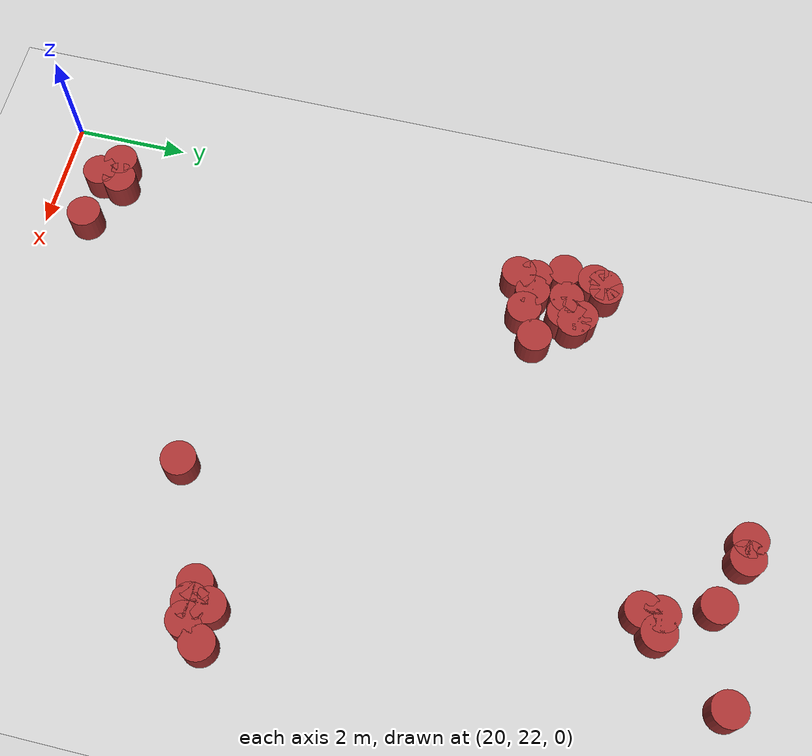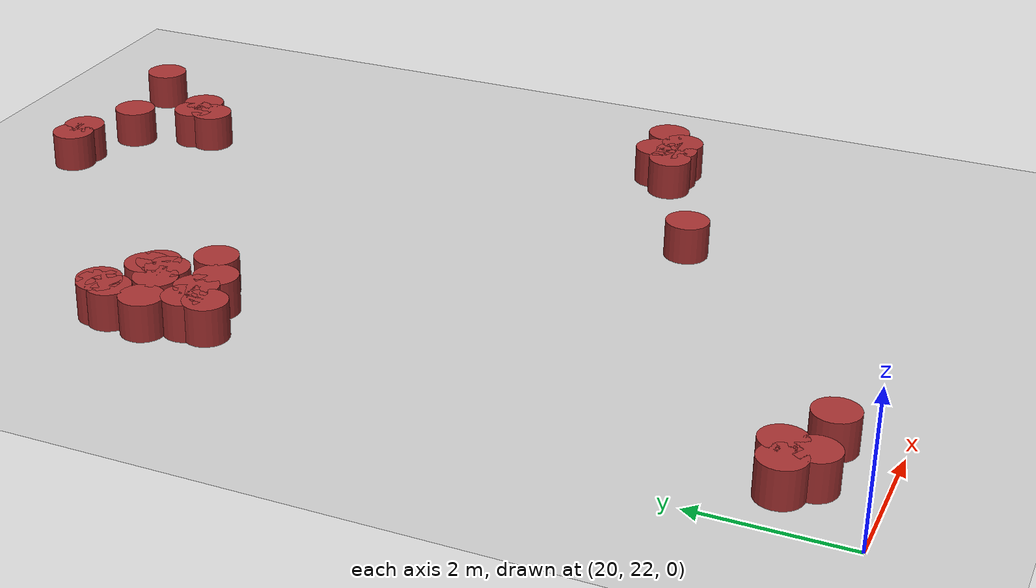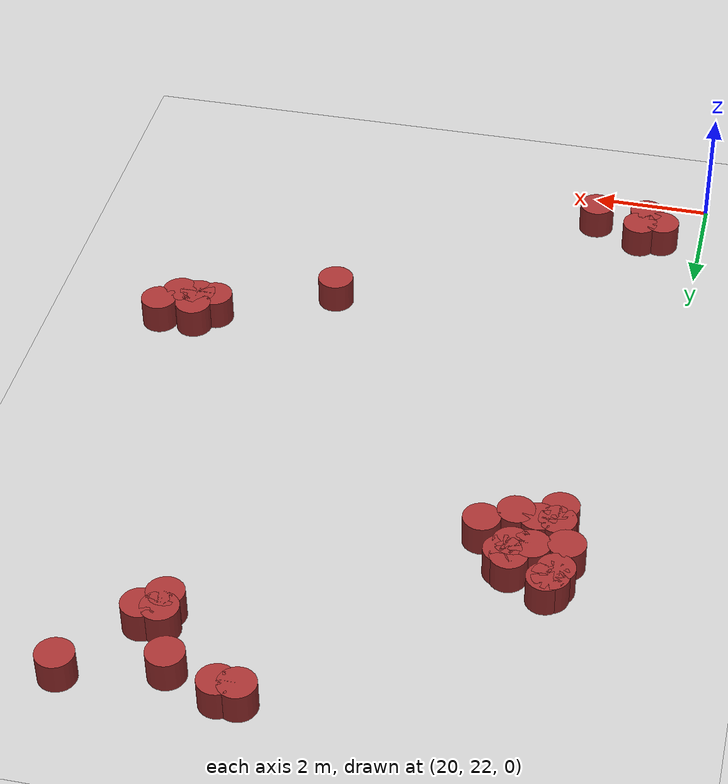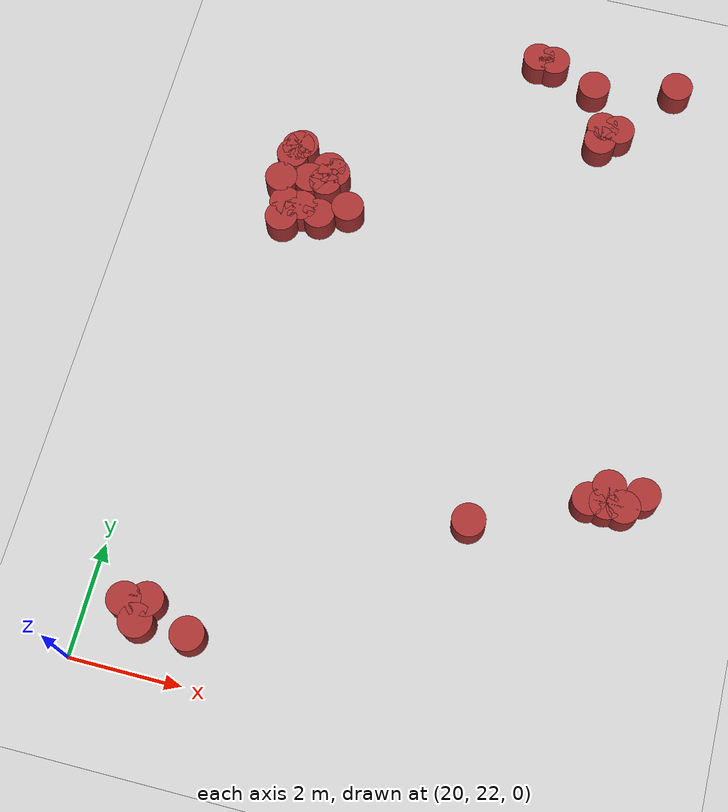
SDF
<sdf version="1.6">
 <world name="default">
  <model name="ground_plane">
   <static>1</static>
   <link name="link">
    <collision name="collision">
     <geometry><plane><normal>0 0 1</normal><size>100 100</size></plane></geometry>
     <surface><friction><ode><mu>100</mu><mu2>50</mu2></ode></friction></surface>
    </collision>
    <visual name="visual">
     <cast_shadows>0</cast_shadows>
     <geometry><plane><normal>0 0 1</normal><size>100 100</size></plane></geometry>
     <material>
      <script><uri>file://media/materials/scripts/gazebo.material</uri><name>Gazebo/Grey</name></script>
     </material>
    </visual>
   </link>
  </model>
  <model name="unit_cylinder_172">
   <static>1</static>
   <pose>22.4428 31.086 0 0 -0 0</pose>
   <link name="link">
    <inertial>
     <mass>1</mass>
     <inertia><ixx>0.145833</ixx><ixy>0</ixy><ixz>0</ixz><iyy>0.145833</iyy><iyz>0</iyz><izz>0.125</izz></inertia>
    </inertial>
    <collision name="collision">
     <geometry><cylinder><radius>0.3</radius><length>1</length></cylinder></geometry>
    </collision>
    <visual name="visual">
     <geometry><cylinder><radius>0.3</radius><length>1</length></cylinder></geometry>
     <material><ambient>0.648 0.192 0.192 1</ambient><diffuse>0.648 0.192 0.192 1</diffuse></material>
     <material>
      <script><name>Gazebo/Grey</name><uri>file://media/materials/scripts/gazebo.material</uri></script>
     </material>
    </visual>
   </link>
  </model>
  <model name="unit_cylinder_175">
   <static>1</static>
   <pose>26.3626 34.7436 0 0 -0 0</pose>
   <link name="link">
    <inertial>
     <mass>1</mass>
     <inertia><ixx>0.145833</ixx><ixy>0</ixy><ixz>0</ixz><iyy>0.145833</iyy><iyz>0</iyz><izz>0.125</izz></inertia>
    </inertial>
    <collision name="collision">
     <geometry><cylinder><radius>0.3</radius><length>1</length></cylinder></geometry>
    </collision>
    <visual name="visual">
     <geometry><cylinder><radius>0.3</radius><length>1</length></cylinder></geometry>
     <material><ambient>0.648 0.192 0.192 1</ambient><diffuse>0.648 0.192 0.192 1</diffuse></material>
     <material>
      <script><name>Gazebo/Grey</name><uri>file://media/materials/scripts/gazebo.material</uri></script>
     </material>
    </visual>
   </link>
  </model>
  <model name="unit_cylinder_176">
   <static>1</static>
   <pose>21.0748 23.1889 0 0 -0 0</pose>
   <link name="link">
    <inertial>
     <mass>1</mass>
     <inertia><ixx>0.145833</ixx><ixy>0</ixy><ixz>0</ixz><iyy>0.145833</iyy><iyz>0</iyz><izz>0.125</izz></inertia>
    </inertial>
    <collision name="collision">
     <geometry><cylinder><radius>0.3</radius><length>1</length></cylinder></geometry>
    </collision>
    <visual name="visual">
     <geometry><cylinder><radius>0.3</radius><length>1</length></cylinder></geometry>
     <material><ambient>0.648 0.192 0.192 1</ambient><diffuse>0.648 0.192 0.192 1</diffuse></material>
     <material>
      <script><name>Gazebo/Grey</name><uri>file://media/materials/scripts/gazebo.material</uri></script>
     </material>
    </visual>
   </link>
  </model>
  <model name="unit_cylinder_262">
   <static>1</static>
   <pose>20.7 23.1 0 0 -0 0</pose>
   <link name="link">
    <inertial>
     <mass>1</mass>
     <inertia><ixx>0.145833</ixx><ixy>0</ixy><ixz>0</ixz><iyy>0.145833</iyy><iyz>0</iyz><izz>0.125</izz></inertia>
    </inertial>
    <collision name="collision">
     <geometry><cylinder><radius>0.3</radius><length>1</length></cylinder></geometry>
    </collision>
    <visual name="visual">
     <geometry><cylinder><radius>0.3</radius><length>1</length></cylinder></geometry>
     <material><ambient>0.648 0.192 0.192 1</ambient><diffuse>0.648 0.192 0.192 1</diffuse></material>
     <material>
      <script><name>Gazebo/Grey</name><uri>file://media/materials/scripts/gazebo.material</uri></script>
     </material>
    </visual>
   </link>
  </model>
  <model name="unit_cylinder_270">
   <static>1</static>
   <pose>21 22.8 0 0 -0 0</pose>
   <link name="link">
    <inertial>
     <mass>1</mass>
     <inertia><ixx>0.145833</ixx><ixy>0</ixy><ixz>0</ixz><iyy>0.145833</iyy><iyz>0</iyz><izz>0.125</izz></inertia>
    </inertial>
    <collision name="collision">
     <geometry><cylinder><radius>0.3</radius><length>1</length></cylinder></geometry>
    </collision>
    <visual name="visual">
     <geometry><cylinder><radius>0.3</radius><length>1</length></cylinder></geometry>
     <material><ambient>0.648 0.192 0.192 1</ambient><diffuse>0.648 0.192 0.192 1</diffuse></material>
     <material>
      <script><name>Gazebo/Grey</name><uri>file://media/materials/scripts/gazebo.material</uri></script>
     </material>
    </visual>
   </link>
  </model>
  <model name="unit_cylinder_276">
   <static>1</static>
   <pose>21.3 30.6 0 0 -0 0</pose>
   <link name="link">
    <inertial>
     <mass>1</mass>
     <inertia><ixx>0.145833</ixx><ixy>0</ixy><ixz>0</ixz><iyy>0.145833</iyy><iyz>0</iyz><izz>0.125</izz></inertia>
    </inertial>
    <collision name="collision">
     <geometry><cylinder><radius>0.3</radius><length>1</length></cylinder></geometry>
    </collision>
    <visual name="visual">
     <geometry><cylinder><radius>0.3</radius><length>1</length></cylinder></geometry>
     <material><ambient>0.648 0.192 0.192 1</ambient><diffuse>0.648 0.192 0.192 1</diffuse></material>
     <material>
      <script><name>Gazebo/Grey</name><uri>file://media/materials/scripts/gazebo.material</uri></script>
     </material>
    </visual>
   </link>
  </model>
  <model name="unit_cylinder_277">
   <static>1</static>
   <pose>21.3 30.9 0 0 -0 0</pose>
   <link name="link">
    <inertial>
     <mass>1</mass>
     <inertia><ixx>0.145833</ixx><ixy>0</ixy><ixz>0</ixz><iyy>0.145833</iyy><iyz>0</iyz><izz>0.125</izz></inertia>
    </inertial>
    <collision name="collision">
     <geometry><cylinder><radius>0.3</radius><length>1</length></cylinder></geometry>
    </collision>
    <visual name="visual">
     <geometry><cylinder><radius>0.3</radius><length>1</length></cylinder></geometry>
     <material><ambient>0.648 0.192 0.192 1</ambient><diffuse>0.648 0.192 0.192 1</diffuse></material>
     <material>
      <script><name>Gazebo/Grey</name><uri>file://media/materials/scripts/gazebo.material</uri></script>
     </material>
    </visual>
   </link>
  </model>
  <model name="unit_cylinder_279">
   <static>1</static>
   <pose>21.2164 32.0962 0 0 -0 0</pose>
   <link name="link">
    <inertial>
     <mass>1</mass>
     <inertia><ixx>0.145833</ixx><ixy>0</ixy><ixz>0</ixz><iyy>0.145833</iyy><iyz>0</iyz><izz>0.125</izz></inertia>
    </inertial>
    <collision name="collision">
     <geometry><cylinder><radius>0.3</radius><length>1</length></cylinder></geometry>
    </collision>
    <visual name="visual">
     <geometry><cylinder><radius>0.3</radius><length>1</length></cylinder></geometry>
     <material><ambient>0.648 0.192 0.192 1</ambient><diffuse>0.648 0.192 0.192 1</diffuse></material>
     <material>
      <script><name>Gazebo/Grey</name><uri>file://media/materials/scripts/gazebo.material</uri></script>
     </material>
    </visual>
   </link>
  </model>
  <model name="unit_cylinder_280">
   <static>1</static>
   <pose>21.0788 31.3877 0 0 -0 0</pose>
   <link name="link">
    <inertial>
     <mass>1</mass>
     <inertia><ixx>0.145833</ixx><ixy>0</ixy><ixz>0</ixz><iyy>0.145833</iyy><iyz>0</iyz><izz>0.125</izz></inertia>
    </inertial>
    <collision name="collision">
     <geometry><cylinder><radius>0.3</radius><length>1</length></cylinder></geometry>
    </collision>
    <visual name="visual">
     <geometry><cylinder><radius>0.3</radius><length>1</length></cylinder></geometry>
     <material><ambient>0.648 0.192 0.192 1</ambient><diffuse>0.648 0.192 0.192 1</diffuse></material>
     <material>
      <script><name>Gazebo/Grey</name><uri>file://media/materials/scripts/gazebo.material</uri></script>
     </material>
    </visual>
   </link>
  </model>
  <model name="unit_cylinder_281">
   <static>1</static>
   <pose>21.6 30.9 0 0 -0 0</pose>
   <link name="link">
    <inertial>
     <mass>1</mass>
     <inertia><ixx>0.145833</ixx><ixy>0</ixy><ixz>0</ixz><iyy>0.145833</iyy><iyz>0</iyz><izz>0.125</izz></inertia>
    </inertial>
    <collision name="collision">
     <geometry><cylinder><radius>0.3</radius><length>1</length></cylinder></geometry>
    </collision>
    <visual name="visual">
     <geometry><cylinder><radius>0.3</radius><length>1</length></cylinder></geometry>
     <material><ambient>0.648 0.192 0.192 1</ambient><diffuse>0.648 0.192 0.192 1</diffuse></material>
     <material>
      <script><name>Gazebo/Grey</name><uri>file://media/materials/scripts/gazebo.material</uri></script>
     </material>
    </visual>
   </link>
  </model>
  <model name="unit_cylinder_282">
   <static>1</static>
   <pose>21.6 31.5 0 0 -0 0</pose>
   <link name="link">
    <inertial>
     <mass>1</mass>
     <inertia><ixx>0.145833</ixx><ixy>0</ixy><ixz>0</ixz><iyy>0.145833</iyy><iyz>0</iyz><izz>0.125</izz></inertia>
    </inertial>
    <collision name="collision">
     <geometry><cylinder><radius>0.3</radius><length>1</length></cylinder></geometry>
    </collision>
    <visual name="visual">
     <geometry><cylinder><radius>0.3</radius><length>1</length></cylinder></geometry>
     <material><ambient>0.648 0.192 0.192 1</ambient><diffuse>0.648 0.192 0.192 1</diffuse></material>
     <material>
      <script><name>Gazebo/Grey</name><uri>file://media/materials/scripts/gazebo.material</uri></script>
     </material>
    </visual>
   </link>
  </model>
  <model name="unit_cylinder_284">
   <static>1</static>
   <pose>21.9 22.8 0 0 -0 0</pose>
   <link name="link">
    <inertial>
     <mass>1</mass>
     <inertia><ixx>0.145833</ixx><ixy>0</ixy><ixz>0</ixz><iyy>0.145833</iyy><iyz>0</iyz><izz>0.125</izz></inertia>
    </inertial>
    <collision name="collision">
     <geometry><cylinder><radius>0.3</radius><length>1</length></cylinder></geometry>
    </collision>
    <visual name="visual">
     <geometry><cylinder><radius>0.3</radius><length>1</length></cylinder></geometry>
     <material><ambient>0.648 0.192 0.192 1</ambient><diffuse>0.648 0.192 0.192 1</diffuse></material>
     <material>
      <script><name>Gazebo/Grey</name><uri>file://media/materials/scripts/gazebo.material</uri></script>
     </material>
    </visual>
   </link>
  </model>
  <model name="unit_cylinder_285">
   <static>1</static>
   <pose>21.9562 30.8161 0 0 -0 0</pose>
   <link name="link">
    <inertial>
     <mass>1</mass>
     <inertia><ixx>0.145833</ixx><ixy>0</ixy><ixz>0</ixz><iyy>0.145833</iyy><iyz>0</iyz><izz>0.125</izz></inertia>
    </inertial>
    <collision name="collision">
     <geometry><cylinder><radius>0.3</radius><length>1</length></cylinder></geometry>
    </collision>
    <visual name="visual">
     <geometry><cylinder><radius>0.3</radius><length>1</length></cylinder></geometry>
     <material><ambient>0.648 0.192 0.192 1</ambient><diffuse>0.648 0.192 0.192 1</diffuse></material>
     <material>
      <script><name>Gazebo/Grey</name><uri>file://media/materials/scripts/gazebo.material</uri></script>
     </material>
    </visual>
   </link>
  </model>
  <model name="unit_cylinder_286">
   <static>1</static>
   <pose>21.9 31.5 0 0 -0 0</pose>
   <link name="link">
    <inertial>
     <mass>1</mass>
     <inertia><ixx>0.145833</ixx><ixy>0</ixy><ixz>0</ixz><iyy>0.145833</iyy><iyz>0</iyz><izz>0.125</izz></inertia>
    </inertial>
    <collision name="collision">
     <geometry><cylinder><radius>0.3</radius><length>1</length></cylinder></geometry>
    </collision>
    <visual name="visual">
     <geometry><cylinder><radius>0.3</radius><length>1</length></cylinder></geometry>
     <material><ambient>0.648 0.192 0.192 1</ambient><diffuse>0.648 0.192 0.192 1</diffuse></material>
     <material>
      <script><name>Gazebo/Grey</name><uri>file://media/materials/scripts/gazebo.material</uri></script>
     </material>
    </visual>
   </link>
  </model>
  <model name="unit_cylinder_287">
   <static>1</static>
   <pose>21.9 31.8 0 0 -0 0</pose>
   <link name="link">
    <inertial>
     <mass>1</mass>
     <inertia><ixx>0.145833</ixx><ixy>0</ixy><ixz>0</ixz><iyy>0.145833</iyy><iyz>0</iyz><izz>0.125</izz></inertia>
    </inertial>
    <collision name="collision">
     <geometry><cylinder><radius>0.3</radius><length>1</length></cylinder></geometry>
    </collision>
    <visual name="visual">
     <geometry><cylinder><radius>0.3</radius><length>1</length></cylinder></geometry>
     <material><ambient>0.648 0.192 0.192 1</ambient><diffuse>0.648 0.192 0.192 1</diffuse></material>
     <material>
      <script><name>Gazebo/Grey</name><uri>file://media/materials/scripts/gazebo.material</uri></script>
     </material>
    </visual>
   </link>
  </model>
  <model name="unit_cylinder_290">
   <static>1</static>
   <pose>21.2837 32.1368 0 0 -0 0</pose>
   <link name="link">
    <inertial>
     <mass>1</mass>
     <inertia><ixx>0.145833</ixx><ixy>0</ixy><ixz>0</ixz><iyy>0.145833</iyy><iyz>0</iyz><izz>0.125</izz></inertia>
    </inertial>
    <collision name="collision">
     <geometry><cylinder><radius>0.3</radius><length>1</length></cylinder></geometry>
    </collision>
    <visual name="visual">
     <geometry><cylinder><radius>0.3</radius><length>1</length></cylinder></geometry>
     <material><ambient>0.648 0.192 0.192 1</ambient><diffuse>0.648 0.192 0.192 1</diffuse></material>
     <material>
      <script><name>Gazebo/Grey</name><uri>file://media/materials/scripts/gazebo.material</uri></script>
     </material>
    </visual>
   </link>
  </model>
  <model name="unit_cylinder_297">
   <static>1</static>
   <pose>22.0157 31.6974 0 0 -0 0</pose>
   <link name="link">
    <inertial>
     <mass>1</mass>
     <inertia><ixx>0.145833</ixx><ixy>0</ixy><ixz>0</ixz><iyy>0.145833</iyy><iyz>0</iyz><izz>0.125</izz></inertia>
    </inertial>
    <collision name="collision">
     <geometry><cylinder><radius>0.3</radius><length>1</length></cylinder></geometry>
    </collision>
    <visual name="visual">
     <geometry><cylinder><radius>0.3</radius><length>1</length></cylinder></geometry>
     <material><ambient>0.648 0.192 0.192 1</ambient><diffuse>0.648 0.192 0.192 1</diffuse></material>
     <material>
      <script><name>Gazebo/Grey</name><uri>file://media/materials/scripts/gazebo.material</uri></script>
     </material>
    </visual>
   </link>
  </model>
  <model name="unit_cylinder_298">
   <static>1</static>
   <pose>21.1555 31.9198 0 0 -0 0</pose>
   <link name="link">
    <inertial>
     <mass>1</mass>
     <inertia><ixx>0.145833</ixx><ixy>0</ixy><ixz>0</ixz><iyy>0.145833</iyy><iyz>0</iyz><izz>0.125</izz></inertia>
    </inertial>
    <collision name="collision">
     <geometry><cylinder><radius>0.3</radius><length>1</length></cylinder></geometry>
    </collision>
    <visual name="visual">
     <geometry><cylinder><radius>0.3</radius><length>1</length></cylinder></geometry>
     <material><ambient>0.648 0.192 0.192 1</ambient><diffuse>0.648 0.192 0.192 1</diffuse></material>
     <material>
      <script><name>Gazebo/Grey</name><uri>file://media/materials/scripts/gazebo.material</uri></script>
     </material>
    </visual>
   </link>
  </model>
  <model name="unit_cylinder_322">
   <static>1</static>
   <pose>25.2 35.1 0 0 -0 0</pose>
   <link name="link">
    <inertial>
     <mass>1</mass>
     <inertia><ixx>0.145833</ixx><ixy>0</ixy><ixz>0</ixz><iyy>0.145833</iyy><iyz>0</iyz><izz>0.125</izz></inertia>
    </inertial>
    <collision name="collision">
     <geometry><cylinder><radius>0.3</radius><length>1</length></cylinder></geometry>
    </collision>
    <visual name="visual">
     <geometry><cylinder><radius>0.3</radius><length>1</length></cylinder></geometry>
     <material><ambient>0.648 0.192 0.192 1</ambient><diffuse>0.648 0.192 0.192 1</diffuse></material>
     <material>
      <script><name>Gazebo/Grey</name><uri>file://media/materials/scripts/gazebo.material</uri></script>
     </material>
    </visual>
   </link>
  </model>
  <model name="unit_cylinder_332">
   <static>1</static>
   <pose>25.5 35.1 0 0 -0 0</pose>
   <link name="link">
    <inertial>
     <mass>1</mass>
     <inertia><ixx>0.145833</ixx><ixy>0</ixy><ixz>0</ixz><iyy>0.145833</iyy><iyz>0</iyz><izz>0.125</izz></inertia>
    </inertial>
    <collision name="collision">
     <geometry><cylinder><radius>0.3</radius><length>1</length></cylinder></geometry>
    </collision>
    <visual name="visual">
     <geometry><cylinder><radius>0.3</radius><length>1</length></cylinder></geometry>
     <material><ambient>0.648 0.192 0.192 1</ambient><diffuse>0.648 0.192 0.192 1</diffuse></material>
     <material>
      <script><name>Gazebo/Grey</name><uri>file://media/materials/scripts/gazebo.material</uri></script>
     </material>
    </visual>
   </link>
  </model>
  <model name="unit_cylinder_356">
   <static>1</static>
   <pose>26.7 33.6 0 0 -0 0</pose>
   <link name="link">
    <inertial>
     <mass>1</mass>
     <inertia><ixx>0.145833</ixx><ixy>0</ixy><ixz>0</ixz><iyy>0.145833</iyy><iyz>0</iyz><izz>0.125</izz></inertia>
    </inertial>
    <collision name="collision">
     <geometry><cylinder><radius>0.3</radius><length>1</length></cylinder></geometry>
    </collision>
    <visual name="visual">
     <geometry><cylinder><radius>0.3</radius><length>1</length></cylinder></geometry>
     <material><ambient>0.648 0.192 0.192 1</ambient><diffuse>0.648 0.192 0.192 1</diffuse></material>
     <material>
      <script><name>Gazebo/Grey</name><uri>file://media/materials/scripts/gazebo.material</uri></script>
     </material>
    </visual>
   </link>
  </model>
  <model name="unit_cylinder_357">
   <static>1</static>
   <pose>26.7 33.9 0 0 -0 0</pose>
   <link name="link">
    <inertial>
     <mass>1</mass>
     <inertia><ixx>0.145833</ixx><ixy>0</ixy><ixz>0</ixz><iyy>0.145833</iyy><iyz>0</iyz><izz>0.125</izz></inertia>
    </inertial>
    <collision name="collision">
     <geometry><cylinder><radius>0.3</radius><length>1</length></cylinder></geometry>
    </collision>
    <visual name="visual">
     <geometry><cylinder><radius>0.3</radius><length>1</length></cylinder></geometry>
     <material><ambient>0.648 0.192 0.192 1</ambient><diffuse>0.648 0.192 0.192 1</diffuse></material>
     <material>
      <script><name>Gazebo/Grey</name><uri>file://media/materials/scripts/gazebo.material</uri></script>
     </material>
    </visual>
   </link>
  </model>
  <model name="unit_cylinder_361">
   <static>1</static>
   <pose>27 33.9 0 0 -0 0</pose>
   <link name="link">
    <inertial>
     <mass>1</mass>
     <inertia><ixx>0.145833</ixx><ixy>0</ixy><ixz>0</ixz><iyy>0.145833</iyy><iyz>0</iyz><izz>0.125</izz></inertia>
    </inertial>
    <collision name="collision">
     <geometry><cylinder><radius>0.3</radius><length>1</length></cylinder></geometry>
    </collision>
    <visual name="visual">
     <geometry><cylinder><radius>0.3</radius><length>1</length></cylinder></geometry>
     <material><ambient>0.648 0.192 0.192 1</ambient><diffuse>0.648 0.192 0.192 1</diffuse></material>
     <material>
      <script><name>Gazebo/Grey</name><uri>file://media/materials/scripts/gazebo.material</uri></script>
     </material>
    </visual>
   </link>
  </model>
  <model name="unit_cylinder_366">
   <static>1</static>
   <pose>27.9 26.7 0 0 -0 0</pose>
   <link name="link">
    <inertial>
     <mass>1</mass>
     <inertia><ixx>0.145833</ixx><ixy>0</ixy><ixz>0</ixz><iyy>0.145833</iyy><iyz>0</iyz><izz>0.125</izz></inertia>
    </inertial>
    <collision name="collision">
     <geometry><cylinder><radius>0.3</radius><length>1</length></cylinder></geometry>
    </collision>
    <visual name="visual">
     <geometry><cylinder><radius>0.3</radius><length>1</length></cylinder></geometry>
     <material><ambient>0.648 0.192 0.192 1</ambient><diffuse>0.648 0.192 0.192 1</diffuse></material>
     <material>
      <script><name>Gazebo/Grey</name><uri>file://media/materials/scripts/gazebo.material</uri></script>
     </material>
    </visual>
   </link>
  </model>
  <model name="unit_cylinder_367">
   <static>1</static>
   <pose>27.9 35.1 0 0 -0 0</pose>
   <link name="link">
    <inertial>
     <mass>1</mass>
     <inertia><ixx>0.145833</ixx><ixy>0</ixy><ixz>0</ixz><iyy>0.145833</iyy><iyz>0</iyz><izz>0.125</izz></inertia>
    </inertial>
    <collision name="collision">
     <geometry><cylinder><radius>0.3</radius><length>1</length></cylinder></geometry>
    </collision>
    <visual name="visual">
     <geometry><cylinder><radius>0.3</radius><length>1</length></cylinder></geometry>
     <material><ambient>0.648 0.192 0.192 1</ambient><diffuse>0.648 0.192 0.192 1</diffuse></material>
     <material>
      <script><name>Gazebo/Grey</name><uri>file://media/materials/scripts/gazebo.material</uri></script>
     </material>
    </visual>
   </link>
  </model>
  <model name="unit_cylinder_370">
   <static>1</static>
   <pose>28.2 26.7 0 0 -0 0</pose>
   <link name="link">
    <inertial>
     <mass>1</mass>
     <inertia><ixx>0.145833</ixx><ixy>0</ixy><ixz>0</ixz><iyy>0.145833</iyy><iyz>0</iyz><izz>0.125</izz></inertia>
    </inertial>
    <collision name="collision">
     <geometry><cylinder><radius>0.3</radius><length>1</length></cylinder></geometry>
    </collision>
    <visual name="visual">
     <geometry><cylinder><radius>0.3</radius><length>1</length></cylinder></geometry>
     <material><ambient>0.648 0.192 0.192 1</ambient><diffuse>0.648 0.192 0.192 1</diffuse></material>
     <material>
      <script><name>Gazebo/Grey</name><uri>file://media/materials/scripts/gazebo.material</uri></script>
     </material>
    </visual>
   </link>
  </model>
  <model name="unit_cylinder_371">
   <static>1</static>
   <pose>28.2 27 0 0 -0 0</pose>
   <link name="link">
    <inertial>
     <mass>1</mass>
     <inertia><ixx>0.145833</ixx><ixy>0</ixy><ixz>0</ixz><iyy>0.145833</iyy><iyz>0</iyz><izz>0.125</izz></inertia>
    </inertial>
    <collision name="collision">
     <geometry><cylinder><radius>0.3</radius><length>1</length></cylinder></geometry>
    </collision>
    <visual name="visual">
     <geometry><cylinder><radius>0.3</radius><length>1</length></cylinder></geometry>
     <material><ambient>0.648 0.192 0.192 1</ambient><diffuse>0.648 0.192 0.192 1</diffuse></material>
     <material>
      <script><name>Gazebo/Grey</name><uri>file://media/materials/scripts/gazebo.material</uri></script>
     </material>
    </visual>
   </link>
  </model>
  <model name="unit_cylinder_374">
   <static>1</static>
   <pose>28.5 26.7 0 0 -0 0</pose>
   <link name="link">
    <inertial>
     <mass>1</mass>
     <inertia><ixx>0.145833</ixx><ixy>0</ixy><ixz>0</ixz><iyy>0.145833</iyy><iyz>0</iyz><izz>0.125</izz></inertia>
    </inertial>
    <collision name="collision">
     <geometry><cylinder><radius>0.3</radius><length>1</length></cylinder></geometry>
    </collision>
    <visual name="visual">
     <geometry><cylinder><radius>0.3</radius><length>1</length></cylinder></geometry>
     <material><ambient>0.648 0.192 0.192 1</ambient><diffuse>0.648 0.192 0.192 1</diffuse></material>
     <material>
      <script><name>Gazebo/Grey</name><uri>file://media/materials/scripts/gazebo.material</uri></script>
     </material>
    </visual>
   </link>
  </model>
  <model name="unit_cylinder_382">
   <static>1</static>
   <pose>28.8 27 0 0 -0 0</pose>
   <link name="link">
    <inertial>
     <mass>1</mass>
     <inertia><ixx>0.145833</ixx><ixy>0</ixy><ixz>0</ixz><iyy>0.145833</iyy><iyz>0</iyz><izz>0.125</izz></inertia>
    </inertial>
    <collision name="collision">
     <geometry><cylinder><radius>0.3</radius><length>1</length></cylinder></geometry>
    </collision>
    <visual name="visual">
     <geometry><cylinder><radius>0.3</radius><length>1</length></cylinder></geometry>
     <material><ambient>0.648 0.192 0.192 1</ambient><diffuse>0.648 0.192 0.192 1</diffuse></material>
     <material>
      <script><name>Gazebo/Grey</name><uri>file://media/materials/scripts/gazebo.material</uri></script>
     </material>
    </visual>
   </link>
  </model>
  <model name="unit_cylinder_413">
   <static>1</static>
   <pose>25.9867 25.8316 0 0 -0 0</pose>
   <link name="link">
    <inertial>
     <mass>1</mass>
     <inertia><ixx>0.145833</ixx><ixy>0</ixy><ixz>0</ixz><iyy>0.145833</iyy><iyz>0</iyz><izz>0.125</izz></inertia>
    </inertial>
    <collision name="collision">
     <geometry><cylinder><radius>0.3</radius><length>1</length></cylinder></geometry>
    </collision>
    <visual name="visual">
     <geometry><cylinder><radius>0.3</radius><length>1</length></cylinder></geometry>
     <material><ambient>0.648 0.192 0.192 1</ambient><diffuse>0.648 0.192 0.192 1</diffuse></material>
     <material>
      <script><name>Gazebo/Grey</name><uri>file://media/materials/scripts/gazebo.material</uri></script>
     </material>
    </visual>
   </link>
  </model>
 </world>
</sdf>
